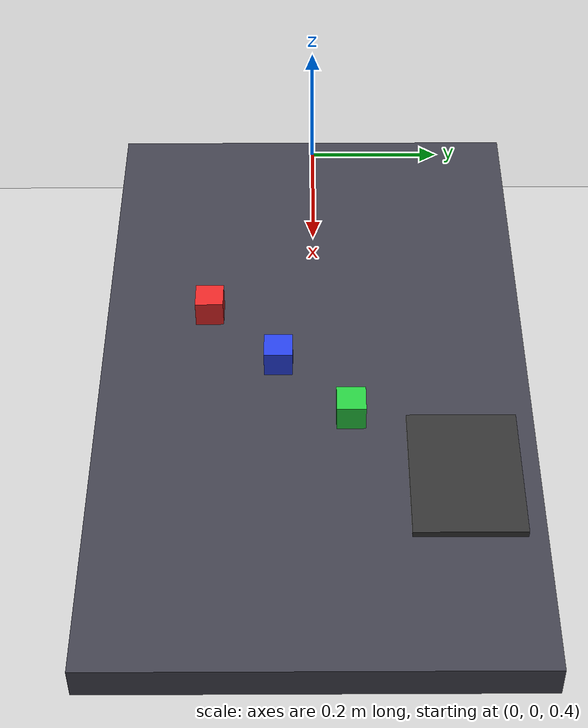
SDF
<?xml version="1.0" ?>
<sdf version="1.7">
  <world name="semiconductor_workbench">

    <!-- Lighting & ground -->
    <include><uri>model://sun</uri></include>
    <include><uri>model://ground_plane</uri></include>

    <!-- 作業台 (1.0m × 0.6m) -->
    <model name="workbench">
      <static>true</static>
      <pose>0.5 0 0.4 0 0 0</pose>
      <link name="surface">
        <visual name="visual">
          <geometry><box><size>1.0 0.6 0.05</size></box></geometry>
          <material>
            <ambient>0.2 0.2 0.25 1</ambient>
            <diffuse>0.25 0.25 0.3 1</diffuse>
          </material>
        </visual>
        <collision name="collision">
          <geometry><box><size>1.0 0.6 0.05</size></box></geometry>
        </collision>
      </link>
    </model>

    <!-- 部品1: 赤い立方体 -->
    <model name="component_red">
      <pose>0.4 -0.15 0.45 0 0 0</pose>
      <link name="link">
        <inertial><mass>0.05</mass></inertial>
        <visual name="visual">
          <geometry><box><size>0.04 0.04 0.04</size></box></geometry>
          <material><ambient>0.8 0.1 0.1 1</ambient><diffuse>0.9 0.15 0.15 1</diffuse></material>
        </visual>
        <collision name="collision">
          <geometry><box><size>0.04 0.04 0.04</size></box></geometry>
        </collision>
      </link>
    </model>

    <!-- 部品2: 青い立方体 -->
    <model name="component_blue">
      <pose>0.5 -0.05 0.45 0 0 0</pose>
      <link name="link">
        <inertial><mass>0.05</mass></inertial>
        <visual name="visual">
          <geometry><box><size>0.04 0.04 0.04</size></box></geometry>
          <material><ambient>0.1 0.2 0.8 1</ambient><diffuse>0.15 0.25 0.9 1</diffuse></material>
        </visual>
        <collision name="collision">
          <geometry><box><size>0.04 0.04 0.04</size></box></geometry>
        </collision>
      </link>
    </model>

    <!-- 部品3: 緑の立方体 -->
    <model name="component_green">
      <pose>0.6 0.05 0.45 0 0 0</pose>
      <link name="link">
        <inertial><mass>0.05</mass></inertial>
        <visual name="visual">
          <geometry><box><size>0.04 0.04 0.04</size></box></geometry>
          <material><ambient>0.1 0.7 0.2 1</ambient><diffuse>0.15 0.8 0.25 1</diffuse></material>
        </visual>
        <collision name="collision">
          <geometry><box><size>0.04 0.04 0.04</size></box></geometry>
        </collision>
      </link>
    </model>

    <!-- 投入トレー (奥側) -->
    <model name="tray">
      <static>true</static>
      <pose>0.7 0.2 0.43 0 0 0</pose>
      <link name="link">
        <visual name="visual">
          <geometry><box><size>0.2 0.15 0.01</size></box></geometry>
          <material><ambient>0.15 0.15 0.15 1</ambient><diffuse>0.2 0.2 0.2 1</diffuse></material>
        </visual>
        <collision name="collision">
          <geometry><box><size>0.2 0.15 0.01</size></box></geometry>
        </collision>
      </link>
    </model>

    <!-- 俯瞰カメラ (作業台の真上 1.5m) -->
    <model name="overhead_camera">
      <static>true</static>
      <pose>0.5 0 1.5 0 1.5708 0</pose>
      <link name="link">
        <sensor name="camera" type="camera">
          <camera>
            <horizontal_fov>1.047</horizontal_fov>
            <image>
              <width>1280</width>
              <height>720</height>
              <format>R8G8B8</format>
            </image>
            <clip><near>0.05</near><far>10</far></clip>
          </camera>
          <update_rate>30</update_rate>
          <plugin name="camera_controller" filename="libgazebo_ros_camera.so">
            <ros>
              <namespace>/overhead</namespace>
              <remapping>image_raw:=/camera/image_raw</remapping>
              <remapping>camera_info:=/camera/camera_info</remapping>
            </ros>
            <camera_name>overhead_cam</camera_name>
            <frame_name>overhead_cam_link</frame_name>
          </plugin>
        </sensor>
      </link>
    </model>

  </world>
</sdf>
